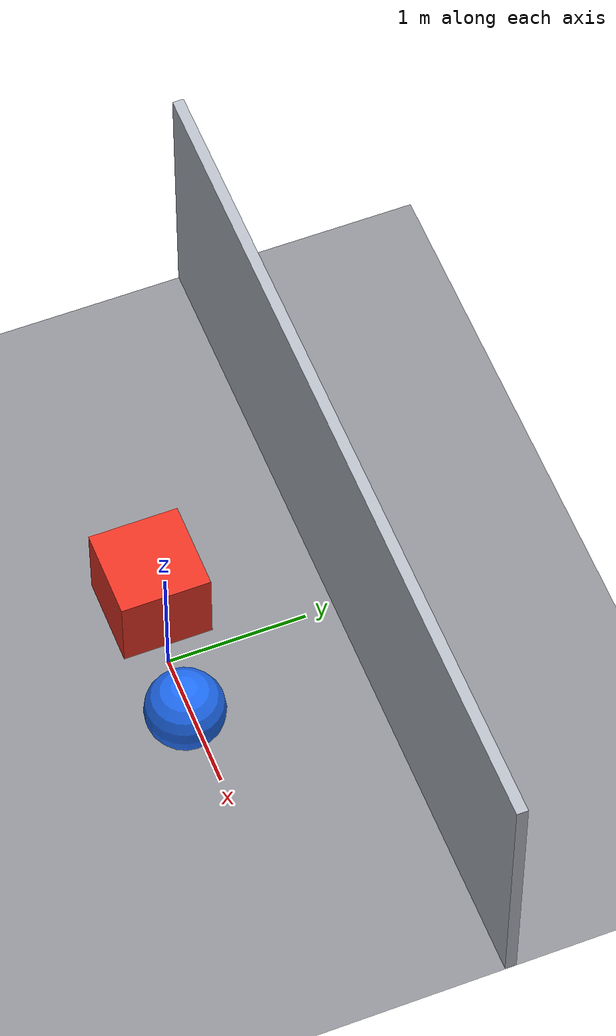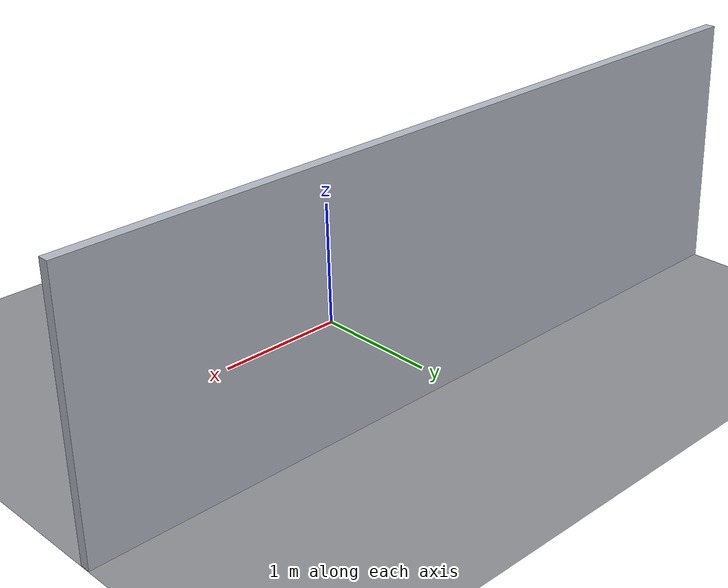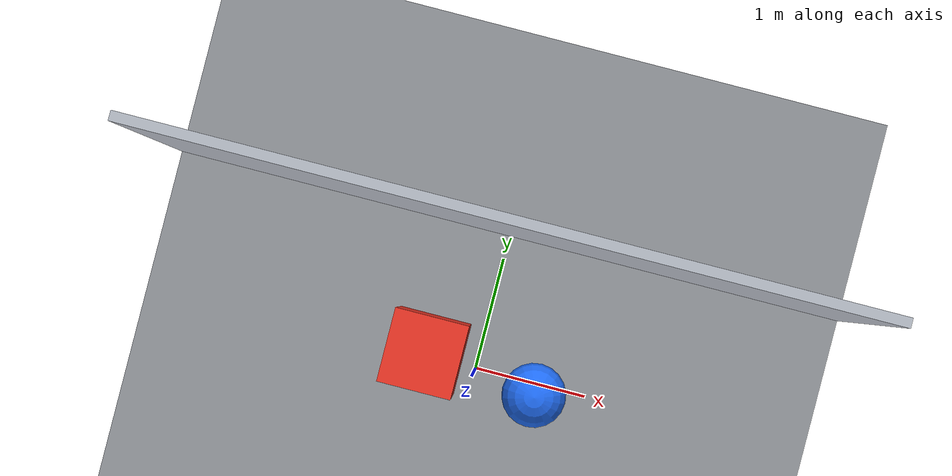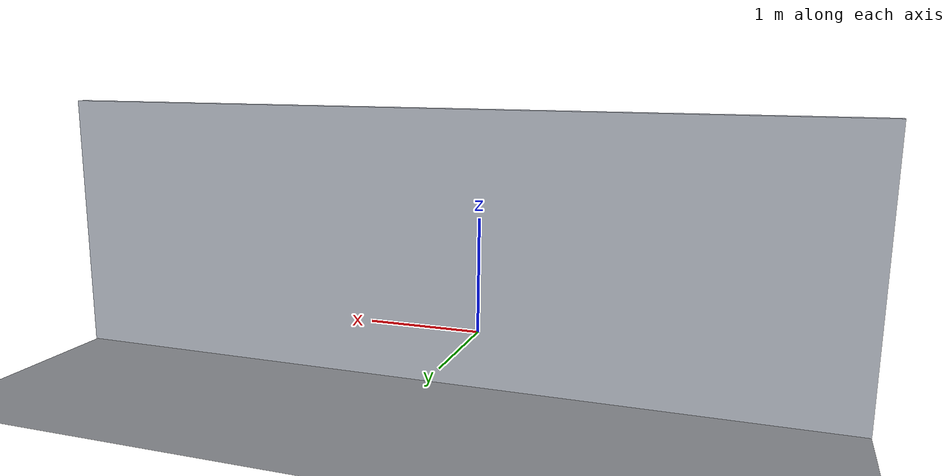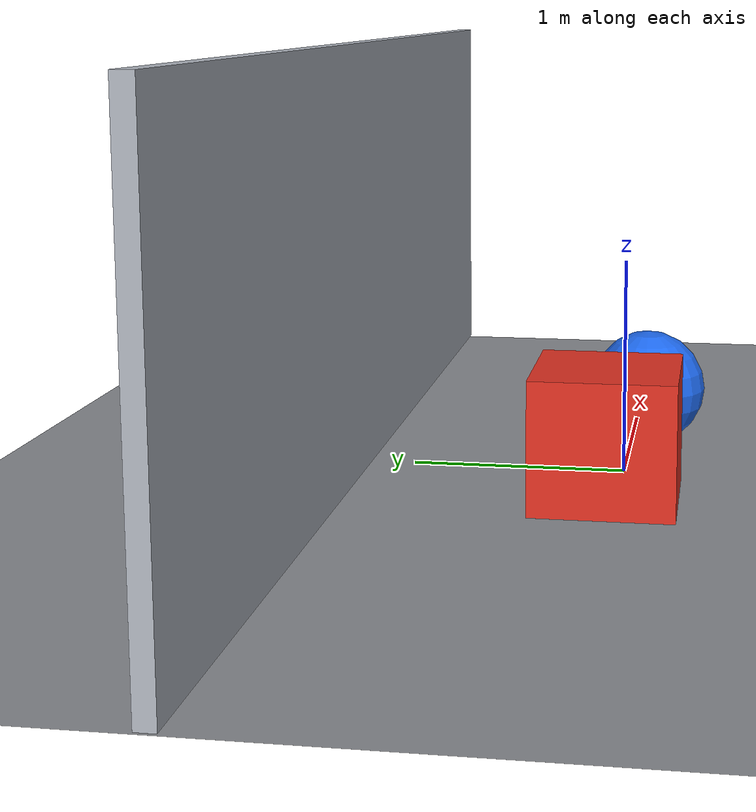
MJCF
<mujoco model="nelif_gbuffer_test">
  <compiler angle="degree"/>

  <option timestep="0.01" gravity="0 0 -9.81"/>

  <visual>
    <global offwidth="512" offheight="512"/>
    <quality shadowsize="2048" offsamples="0"/>
    <headlight ambient="0 0 0" diffuse="0 0 0" specular="0 0 0"/>
    <map znear="0.01" zfar="20"/>
  </visual>

  <asset>
    <material name="mat_floor" rgba="0.55 0.56 0.58 1" specular="0.15" shininess="0.35"/>
    <material name="mat_wall" rgba="0.70 0.72 0.76 1" specular="0.08" shininess="0.2"/>
    <material name="mat_box" rgba="0.90 0.20 0.14 1" specular="0.35" shininess="0.55"/>
    <material name="mat_sphere" rgba="0.12 0.42 0.95 1" specular="0.55" shininess="0.75"/>
  </asset>

  <worldbody>
    <camera name="nelif_fixed_cam"
            mode="fixed"
            pos="2.4 -3.2 1.6"
            xyaxes="0.800 0.600 0.000 -0.263 0.351 0.899"
            fovy="45"/>

    <light name="nelif_key_light"
           mode="fixed"
           type="point"
           castshadow="true"
           pos="-1.4 -1.8 2.8"
           dir="0.35 0.45 -1"
           diffuse="1.0 0.94 0.86"
           specular="0.45 0.45 0.45"
           bulbradius="0.12"
           cutoff="55"/>

    <geom name="floor"
          type="plane"
          pos="0 0 0"
          size="3 3 0.02"
          material="mat_floor"/>

    <geom name="back_wall"
          type="box"
          pos="0 1.25 1.0"
          size="3.0 0.04 1.0"
          material="mat_wall"/>

    <body name="box_body" pos="-0.45 0.05 0.3">
      <geom name="red_box"
            type="box"
            size="0.32 0.32 0.30"
            material="mat_box"/>
    </body>

    <body name="sphere_body" pos="0.55 -0.08 0.28">
      <geom name="blue_sphere"
            type="sphere"
            size="0.28"
            material="mat_sphere"/>
    </body>
  </worldbody>
</mujoco>
